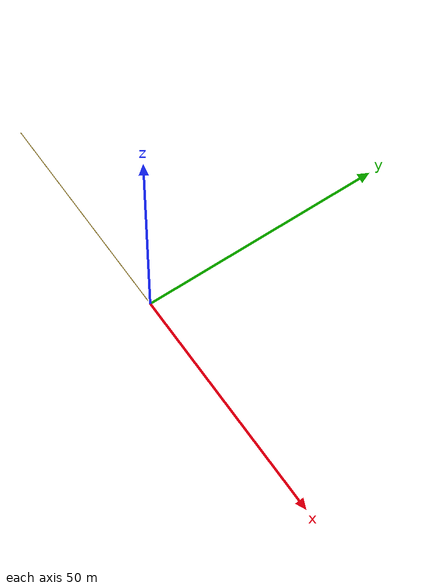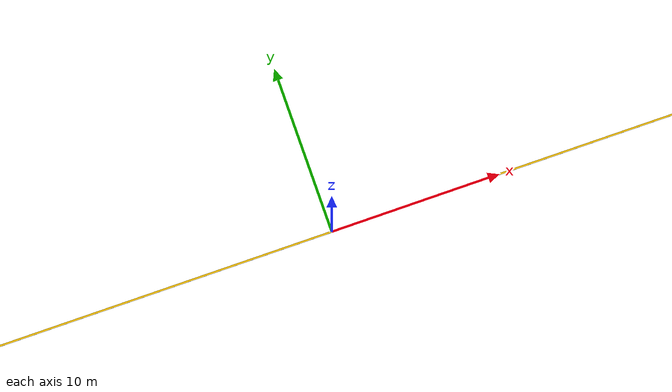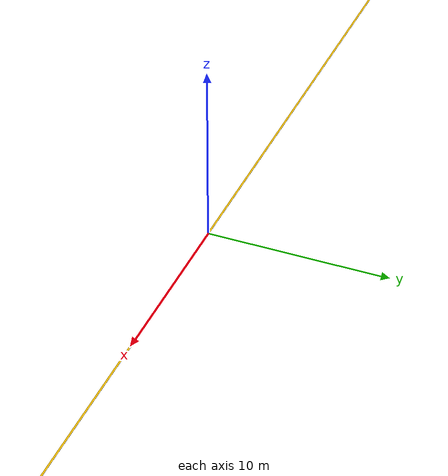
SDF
<?xml version="1.0" ?>
<sdf version="1.6">
  <model name="yellow_line">
    <static>true</static>  <!-- Line remains stationary -->
    <link name="line_link">
      <!-- Visual for the white line -->
      <visual name="line_visual">
        <geometry>
          <box>
            <size>89.95 0.1 0.01</size>  <!-- Length, width, height -->
          </box>
        </geometry>
        <material>
          <ambient>0.9 0.7 0 1</ambient>      <!-- Road-line yellow ambient color -->
          <diffuse>0.9 0.7 0 1</diffuse>      <!-- Road-line yellow diffuse light -->
          <specular>0.9 0.7 0 1</specular>    <!-- Road-line yellow shine -->
          <emissive>0.9 0.7 0 1</emissive>    <!-- Road-line yellow emissive color -->

        </material>
      </visual>

      <!-- Collision geometry (optional) -->
      <collision name="line_collision">
        <geometry>
          <box>
            <size>89.95 0.1 0.01</size>
          </box>
        </geometry>
      </collision>
    </link>
  </model>
</sdf>
